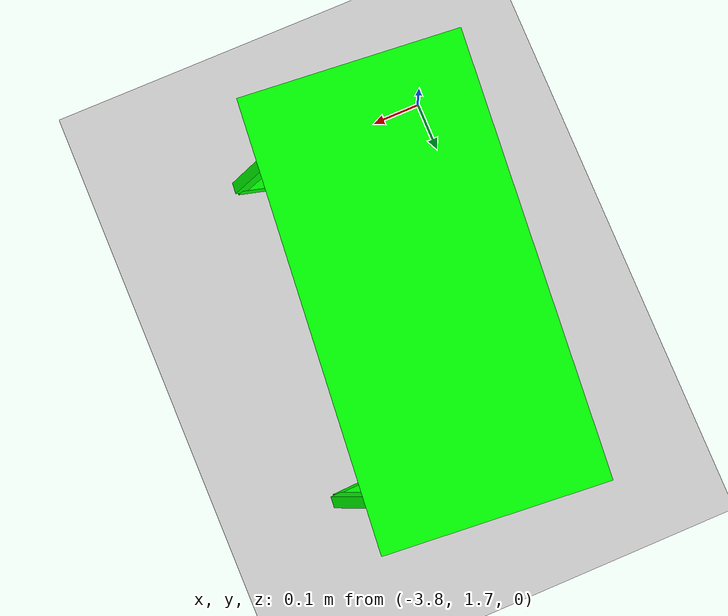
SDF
<sdf version="1.6">
 <world name="default">
  <model name="ground_plane">
   <static>1</static>
   <link name="link">
    <collision name="collision">
     <geometry><plane><normal>0 0 1</normal><size>100 100</size></plane></geometry>
     <surface>
      <contact><collide_bitmask>65535</collide_bitmask></contact>
      <friction><ode><mu>100</mu><mu2>50</mu2></ode></friction>
     </surface>
    </collision>
    <visual name="visual">
     <cast_shadows>0</cast_shadows>
     <geometry><plane><normal>0 0 1</normal><size>100 100</size></plane></geometry>
     <material>
      <script><uri>file://media/materials/scripts/gazebo.material</uri><name>Gazebo/Grey</name></script>
     </material>
    </visual>
   </link>
  </model>
  <model name="humanoid_robot">
   <link name="link_10">
    <inertial>
     <mass>10</mass>
     <inertia>
      <ixx>0.166667</ixx>
      <ixy>0</ixy>
      <ixz>0</ixz>
      <iyy>0.166667</iyy>
      <iyz>0</iyz>
      <izz>0.166667</izz>
     </inertia>
    </inertial>
    <pose>-0.193692 0.719799 0.180001 -0 -0 -0</pose>
    <visual name="visual">
     <geometry><box><size>0.15 0.15 0.05</size></box></geometry>
     <material>
      <lighting>1</lighting>
      <script><uri>file://media/materials/scripts/gazebo.material</uri><name>Gazebo/Grey</name></script>
      <shader type="vertex"><normal_map>__default__</normal_map></shader>
      <ambient>0 1 0 1</ambient>
      <diffuse>0.7 0.7 0.7 1</diffuse>
      <specular>0.01 0.01 0.01 1</specular>
      <emissive>0 0 0 1</emissive>
     </material>
    </visual>
    <collision name="collision">
     <geometry><box><size>0.15 0.15 0.05</size></box></geometry>
     <surface>
      <friction>
       <ode><mu>1</mu><mu2>1</mu2><fdir1>0 0 0</fdir1><slip1>0</slip1><slip2>0</slip2></ode>
       <torsional>
        <coefficient>1</coefficient>
        <patch_radius>0</patch_radius>
        <surface_radius>0</surface_radius>
        <use_patch_radius>1</use_patch_radius>
        <ode><slip>0</slip></ode>
       </torsional>
      </friction>
      <bounce><restitution_coefficient>0</restitution_coefficient><threshold>1e+06</threshold></bounce>
      <contact>
       <collide_without_contact>0</collide_without_contact>
       <collide_without_contact_bitmask>1</collide_without_contact_bitmask>
       <collide_bitmask>1</collide_bitmask>
       <ode>
        <soft_cfm>0</soft_cfm>
        <soft_erp>0.2</soft_erp>
        <kp>1e+13</kp>
        <kd>1</kd>
        <max_vel>0.01</max_vel>
        <min_depth>0</min_depth>
       </ode>
       <bullet>
        <split_impulse>1</split_impulse>
        <split_impulse_penetration_threshold>-0.01</split_impulse_penetration_threshold>
        <soft_cfm>0</soft_cfm>
        <soft_erp>0.2</soft_erp>
        <kp>1e+13</kp>
        <kd>1</kd>
       </bullet>
      </contact>
     </surface>
    </collision>
   </link>
   <link name="link_10_clone">
    <inertial>
     <mass>10</mass>
     <inertia>
      <ixx>0.166667</ixx>
      <ixy>0</ixy>
      <ixz>0</ixz>
      <iyy>0.166667</iyy>
      <iyz>0</iyz>
      <izz>0.166667</izz>
     </inertia>
    </inertial>
    <pose>-0.193692 0.139799 0.180001 -0 -0 -0</pose>
    <visual name="visual">
     <geometry><box><size>0.15 0.15 0.05</size></box></geometry>
     <material>
      <lighting>1</lighting>
      <script><uri>file://media/materials/scripts/gazebo.material</uri><name>Gazebo/Grey</name></script>
      <shader type="vertex"><normal_map>__default__</normal_map></shader>
      <ambient>0 1 0 1</ambient>
      <diffuse>0.7 0.7 0.7 1</diffuse>
      <specular>0.01 0.01 0.01 1</specular>
      <emissive>0 0 0 1</emissive>
     </material>
    </visual>
    <collision name="collision">
     <geometry><box><size>0.15 0.15 0.05</size></box></geometry>
     <surface>
      <friction>
       <ode><mu>1</mu><mu2>1</mu2><fdir1>0 0 0</fdir1><slip1>0</slip1><slip2>0</slip2></ode>
       <torsional>
        <coefficient>1</coefficient>
        <patch_radius>0</patch_radius>
        <surface_radius>0</surface_radius>
        <use_patch_radius>1</use_patch_radius>
        <ode><slip>0</slip></ode>
       </torsional>
      </friction>
      <bounce><restitution_coefficient>0</restitution_coefficient><threshold>1e+06</threshold></bounce>
      <contact>
       <collide_without_contact>0</collide_without_contact>
       <collide_without_contact_bitmask>1</collide_without_contact_bitmask>
       <collide_bitmask>1</collide_bitmask>
       <ode>
        <soft_cfm>0</soft_cfm>
        <soft_erp>0.2</soft_erp>
        <kp>1e+13</kp>
        <kd>1</kd>
        <max_vel>0.01</max_vel>
        <min_depth>0</min_depth>
       </ode>
       <bullet>
        <split_impulse>1</split_impulse>
        <split_impulse_penetration_threshold>-0.01</split_impulse_penetration_threshold>
        <soft_cfm>0</soft_cfm>
        <soft_erp>0.2</soft_erp>
        <kp>1e+13</kp>
        <kd>1</kd>
       </bullet>
      </contact>
     </surface>
    </collision>
   </link>
   <link name="link_7">
    <inertial>
     <mass>1</mass>
     <inertia>
      <ixx>0.166667</ixx>
      <ixy>0</ixy>
      <ixz>0</ixz>
      <iyy>0.166667</iyy>
      <iyz>0</iyz>
      <izz>0.166667</izz>
     </inertia>
    </inertial>
    <pose>-0.193691 0.429799 0.68 0 -0 0</pose>
    <visual name="visual">
     <geometry><box><size>0.3 0.6 0.1</size></box></geometry>
     <material>
      <lighting>1</lighting>
      <script><uri>file://media/materials/scripts/gazebo.material</uri><name>Gazebo/Grey</name></script>
      <shader type="vertex"><normal_map>__default__</normal_map></shader>
      <ambient>0 1 0 1</ambient>
      <diffuse>0.7 0.7 0.7 1</diffuse>
      <specular>0.01 0.01 0.01 1</specular>
      <emissive>0 0 0 1</emissive>
     </material>
    </visual>
    <collision name="collision">
     <geometry><box><size>0.3 0.6 0.1</size></box></geometry>
     <surface>
      <friction>
       <ode><mu>1</mu><mu2>1</mu2><fdir1>0 0 0</fdir1><slip1>0</slip1><slip2>0</slip2></ode>
       <torsional>
        <coefficient>1</coefficient>
        <patch_radius>0</patch_radius>
        <surface_radius>0</surface_radius>
        <use_patch_radius>1</use_patch_radius>
        <ode><slip>0</slip></ode>
       </torsional>
      </friction>
      <bounce><restitution_coefficient>0</restitution_coefficient><threshold>1e+06</threshold></bounce>
      <contact>
       <collide_without_contact>0</collide_without_contact>
       <collide_without_contact_bitmask>1</collide_without_contact_bitmask>
       <collide_bitmask>1</collide_bitmask>
       <ode>
        <soft_cfm>0</soft_cfm>
        <soft_erp>0.2</soft_erp>
        <kp>1e+13</kp>
        <kd>1</kd>
        <max_vel>0.01</max_vel>
        <min_depth>0</min_depth>
       </ode>
       <bullet>
        <split_impulse>1</split_impulse>
        <split_impulse_penetration_threshold>-0.01</split_impulse_penetration_threshold>
        <soft_cfm>0</soft_cfm>
        <soft_erp>0.2</soft_erp>
        <kp>1e+13</kp>
        <kd>1</kd>
       </bullet>
      </contact>
     </surface>
    </collision>
   </link>
   <link name="link_8">
    <inertial>
     <mass>1</mass>
     <inertia>
      <ixx>0.166667</ixx>
      <ixy>0</ixy>
      <ixz>0</ixz>
      <iyy>0.166667</iyy>
      <iyz>0</iyz>
      <izz>0.166667</izz>
     </inertia>
     <pose>0 0 -0.01 0 -0 0</pose>
    </inertial>
    <pose>-0.193691 0.139799 0.68 0 -0.6435 0</pose>
    <visual name="visual">
     <pose>0 0 -0.2 0 -0 0</pose>
     <geometry><box><size>0.02 0.02 0.4</size></box></geometry>
     <material>
      <lighting>1</lighting>
      <script><uri>file://media/materials/scripts/gazebo.material</uri><name>Gazebo/Grey</name></script>
      <shader type="vertex"><normal_map>__default__</normal_map></shader>
      <ambient>0 1 0 1</ambient>
      <diffuse>0.7 0.7 0.7 1</diffuse>
      <specular>0.01 0.01 0.01 1</specular>
      <emissive>0 0 0 1</emissive>
     </material>
    </visual>
    <collision name="collision">
     <pose>0 0 -0.2 0 -0 0</pose>
     <geometry><box><size>0.02 0.02 0.4</size></box></geometry>
     <surface>
      <friction>
       <ode><mu>1</mu><mu2>1</mu2><fdir1>0 0 0</fdir1><slip1>0</slip1><slip2>0</slip2></ode>
       <torsional>
        <coefficient>1</coefficient>
        <patch_radius>0</patch_radius>
        <surface_radius>0</surface_radius>
        <use_patch_radius>1</use_patch_radius>
        <ode><slip>0</slip></ode>
       </torsional>
      </friction>
      <bounce><restitution_coefficient>0</restitution_coefficient><threshold>1e+06</threshold></bounce>
      <contact>
       <collide_without_contact>0</collide_without_contact>
       <collide_without_contact_bitmask>1</collide_without_contact_bitmask>
       <collide_bitmask>1</collide_bitmask>
       <ode>
        <soft_cfm>0</soft_cfm>
        <soft_erp>0.2</soft_erp>
        <kp>1e+13</kp>
        <kd>1</kd>
        <max_vel>0.01</max_vel>
        <min_depth>0</min_depth>
       </ode>
       <bullet>
        <split_impulse>1</split_impulse>
        <split_impulse_penetration_threshold>-0.01</split_impulse_penetration_threshold>
        <soft_cfm>0</soft_cfm>
        <soft_erp>0.2</soft_erp>
        <kp>1e+13</kp>
        <kd>1</kd>
       </bullet>
      </contact>
     </surface>
    </collision>
   </link>
   <link name="link_8_clone">
    <inertial>
     <mass>1</mass>
     <inertia>
      <ixx>0.166667</ixx>
      <ixy>0</ixy>
      <ixz>0</ixz>
      <iyy>0.166667</iyy>
      <iyz>0</iyz>
      <izz>0.166667</izz>
     </inertia>
     <pose>0 0 -0.01 0 -0 0</pose>
    </inertial>
    <pose>-0.193691 0.719799 0.68 0 -0.6435 0</pose>
    <visual name="visual">
     <pose>0 0 -0.2 0 -0 0</pose>
     <geometry><box><size>0.02 0.02 0.4</size></box></geometry>
     <material>
      <lighting>1</lighting>
      <script><uri>file://media/materials/scripts/gazebo.material</uri><name>Gazebo/Grey</name></script>
      <shader type="vertex"><normal_map>__default__</normal_map></shader>
      <ambient>0 1 0 1</ambient>
      <diffuse>0.7 0.7 0.7 1</diffuse>
      <specular>0.01 0.01 0.01 1</specular>
      <emissive>0 0 0 1</emissive>
     </material>
    </visual>
    <collision name="collision">
     <pose>0 0 -0.2 0 -0 0</pose>
     <geometry><box><size>0.02 0.02 0.4</size></box></geometry>
     <surface>
      <friction>
       <ode><mu>1</mu><mu2>1</mu2><fdir1>0 0 0</fdir1><slip1>0</slip1><slip2>0</slip2></ode>
       <torsional>
        <coefficient>1</coefficient>
        <patch_radius>0</patch_radius>
        <surface_radius>0</surface_radius>
        <use_patch_radius>1</use_patch_radius>
        <ode><slip>0</slip></ode>
       </torsional>
      </friction>
      <bounce><restitution_coefficient>0</restitution_coefficient><threshold>1e+06</threshold></bounce>
      <contact>
       <collide_without_contact>0</collide_without_contact>
       <collide_without_contact_bitmask>1</collide_without_contact_bitmask>
       <collide_bitmask>1</collide_bitmask>
       <ode>
        <soft_cfm>0</soft_cfm>
        <soft_erp>0.2</soft_erp>
        <kp>1e+13</kp>
        <kd>1</kd>
        <max_vel>0.01</max_vel>
        <min_depth>0</min_depth>
       </ode>
       <bullet>
        <split_impulse>1</split_impulse>
        <split_impulse_penetration_threshold>-0.01</split_impulse_penetration_threshold>
        <soft_cfm>0</soft_cfm>
        <soft_erp>0.2</soft_erp>
        <kp>1e+13</kp>
        <kd>1</kd>
       </bullet>
      </contact>
     </surface>
    </collision>
   </link>
   <link name="link_9">
    <inertial>
     <mass>1</mass>
     <inertia>
      <ixx>0.166667</ixx>
      <ixy>0</ixy>
      <ixz>0</ixz>
      <iyy>0.166667</iyy>
      <iyz>0</iyz>
      <izz>0.166667</izz>
     </inertia>
    </inertial>
    <pose>0.046308 0.719799 0.359999 0 0.9273 0</pose>
    <visual name="visual">
     <pose>0 0 -0.15 0 -0 0</pose>
     <geometry><box><size>0.02 0.02 0.3</size></box></geometry>
     <material>
      <lighting>1</lighting>
      <script><uri>file://media/materials/scripts/gazebo.material</uri><name>Gazebo/Grey</name></script>
      <shader type="vertex"><normal_map>__default__</normal_map></shader>
      <ambient>0 1 0 1</ambient>
      <diffuse>0.7 0.7 0.7 1</diffuse>
      <specular>0.01 0.01 0.01 1</specular>
      <emissive>0 0 0 1</emissive>
     </material>
    </visual>
    <collision name="collision">
     <pose>0 0 -0.15 0 -0 0</pose>
     <geometry><box><size>0.02 0.02 0.3</size></box></geometry>
     <surface>
      <friction>
       <ode><mu>1</mu><mu2>1</mu2><fdir1>0 0 0</fdir1><slip1>0</slip1><slip2>0</slip2></ode>
       <torsional>
        <coefficient>1</coefficient>
        <patch_radius>0</patch_radius>
        <surface_radius>0</surface_radius>
        <use_patch_radius>1</use_patch_radius>
        <ode><slip>0</slip></ode>
       </torsional>
      </friction>
      <bounce><restitution_coefficient>0</restitution_coefficient><threshold>1e+06</threshold></bounce>
      <contact>
       <collide_without_contact>0</collide_without_contact>
       <collide_without_contact_bitmask>1</collide_without_contact_bitmask>
       <collide_bitmask>1</collide_bitmask>
       <ode>
        <soft_cfm>0</soft_cfm>
        <soft_erp>0.2</soft_erp>
        <kp>1e+13</kp>
        <kd>1</kd>
        <max_vel>0.01</max_vel>
        <min_depth>0</min_depth>
       </ode>
       <bullet>
        <split_impulse>1</split_impulse>
        <split_impulse_penetration_threshold>-0.01</split_impulse_penetration_threshold>
        <soft_cfm>0</soft_cfm>
        <soft_erp>0.2</soft_erp>
        <kp>1e+13</kp>
        <kd>1</kd>
       </bullet>
      </contact>
     </surface>
    </collision>
   </link>
   <link name="link_9_clone">
    <inertial>
     <mass>1</mass>
     <inertia>
      <ixx>0.166667</ixx>
      <ixy>0</ixy>
      <ixz>0</ixz>
      <iyy>0.166667</iyy>
      <iyz>0</iyz>
      <izz>0.166667</izz>
     </inertia>
    </inertial>
    <pose>0.046308 0.139799 0.359999 0 0.9273 0</pose>
    <visual name="visual">
     <pose>0 0 -0.15 0 -0 0</pose>
     <geometry><box><size>0.02 0.02 0.3</size></box></geometry>
     <material>
      <lighting>1</lighting>
      <script><uri>file://media/materials/scripts/gazebo.material</uri><name>Gazebo/Grey</name></script>
      <shader type="vertex"><normal_map>__default__</normal_map></shader>
      <ambient>0 1 0 1</ambient>
      <diffuse>0.7 0.7 0.7 1</diffuse>
      <specular>0.01 0.01 0.01 1</specular>
      <emissive>0 0 0 1</emissive>
     </material>
    </visual>
    <collision name="collision">
     <pose>0 0 -0.15 0 -0 0</pose>
     <geometry><box><size>0.02 0.02 0.3</size></box></geometry>
     <surface>
      <friction>
       <ode><mu>1</mu><mu2>1</mu2><fdir1>0 0 0</fdir1><slip1>0</slip1><slip2>0</slip2></ode>
       <torsional>
        <coefficient>1</coefficient>
        <patch_radius>0</patch_radius>
        <surface_radius>0</surface_radius>
        <use_patch_radius>1</use_patch_radius>
        <ode><slip>0</slip></ode>
       </torsional>
      </friction>
      <bounce><restitution_coefficient>0</restitution_coefficient><threshold>1e+06</threshold></bounce>
      <contact>
       <collide_without_contact>0</collide_without_contact>
       <collide_without_contact_bitmask>1</collide_without_contact_bitmask>
       <collide_bitmask>1</collide_bitmask>
       <ode>
        <soft_cfm>0</soft_cfm>
        <soft_erp>0.2</soft_erp>
        <kp>1e+13</kp>
        <kd>1</kd>
        <max_vel>0.01</max_vel>
        <min_depth>0</min_depth>
       </ode>
       <bullet>
        <split_impulse>1</split_impulse>
        <split_impulse_penetration_threshold>-0.01</split_impulse_penetration_threshold>
        <soft_cfm>0</soft_cfm>
        <soft_erp>0.2</soft_erp>
        <kp>1e+13</kp>
        <kd>1</kd>
       </bullet>
      </contact>
     </surface>
    </collision>
   </link>
   <joint name="link_7_JOINT_1" type="fixed">
    <parent>link_7</parent>
    <child>link_8</child>
    <physics>
     <ode><limit><cfm>0</cfm><erp>0.2</erp></limit><suspension><cfm>0</cfm><erp>0.2</erp></suspension></ode>
    </physics>
   </joint>
   <joint name="link_7_JOINT_2" type="fixed">
    <parent>link_7</parent>
    <child>link_8_clone</child>
    <physics>
     <ode><limit><cfm>0</cfm><erp>0.2</erp></limit><suspension><cfm>0</cfm><erp>0.2</erp></suspension></ode>
    </physics>
   </joint>
   <joint name="link_8_JOINT_5" type="fixed">
    <parent>link_8</parent>
    <child>link_9_clone</child>
    <physics>
     <ode><limit><cfm>0</cfm><erp>0.2</erp></limit><suspension><cfm>0</cfm><erp>0.2</erp></suspension></ode>
    </physics>
   </joint>
   <joint name="link_8_clone_JOINT_4" type="fixed">
    <parent>link_8_clone</parent>
    <child>link_9</child>
    <physics>
     <ode><limit><cfm>0</cfm><erp>0.2</erp></limit><suspension><cfm>0</cfm><erp>0.2</erp></suspension></ode>
    </physics>
   </joint>
   <joint name="link_9_JOINT_6" type="fixed">
    <parent>link_9</parent>
    <child>link_10</child>
    <physics>
     <ode><limit><cfm>0</cfm><erp>0.2</erp></limit><suspension><cfm>0</cfm><erp>0.2</erp></suspension></ode>
    </physics>
   </joint>
   <joint name="link_9_clone_JOINT_7" type="fixed">
    <parent>link_9_clone</parent>
    <child>link_10_clone</child>
    <physics>
     <ode><limit><cfm>0</cfm><erp>0.2</erp></limit><suspension><cfm>0</cfm><erp>0.2</erp></suspension></ode>
    </physics>
   </joint>
   <static>0</static>
   <pose>-3.47297 1.63865 -0.154997 -9e-06 -1e-06 -0.084783</pose>
  </model>
 </world>
</sdf>
